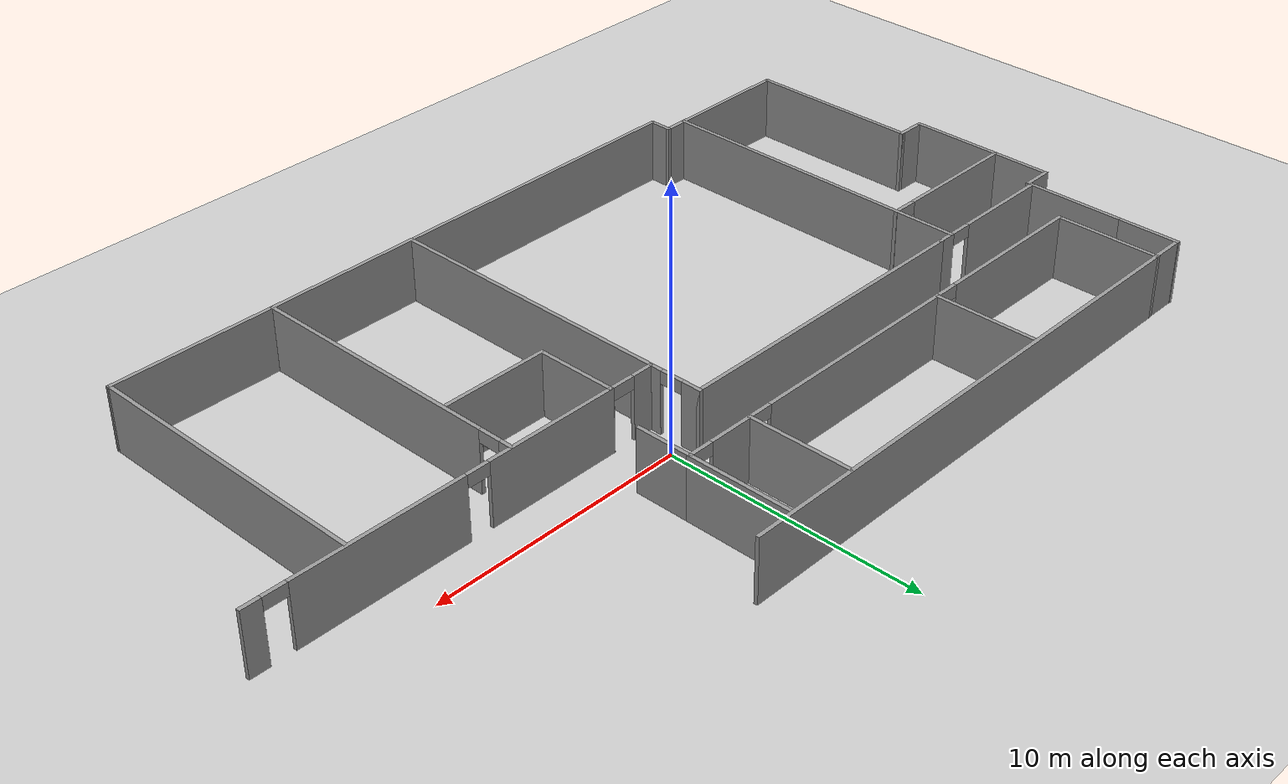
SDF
<sdf version="1.7">
 <world name="default">
  <model name="ground_plane">
   <static>1</static>
   <link name="link">
    <collision name="collision">
     <geometry><plane><normal>0 0 1</normal><size>100 100</size></plane></geometry>
     <surface>
      <contact><collide_bitmask>65535</collide_bitmask></contact>
      <friction><ode><mu>100</mu><mu2>50</mu2></ode></friction>
     </surface>
    </collision>
    <visual name="visual">
     <cast_shadows>0</cast_shadows>
     <geometry><plane><normal>0 0 1</normal><size>100 100</size></plane></geometry>
     <material>
      <script><uri>file://media/materials/scripts/gazebo.material</uri><name>Gazebo/Grey</name></script>
     </material>
    </visual>
   </link>
  </model>
  <model name="SMU_4th_Floor">
   <pose>21.2656 -3.42392 0 0 -0 0</pose>
   <link name="Wall_10">
    <pose>-21.9301 2.97041 0 0 -0 1.5708</pose>
    <visual name="Wall_10_Visual_0">
     <pose>-0.849622 0 1.25 0 -0 0</pose>
     <geometry><box><size>0.550756 0.15 2.5</size></box></geometry>
     <material>
      <script><uri>file://media/materials/scripts/gazebo.material</uri><name>Gazebo/Grey</name></script>
      <ambient>1 1 1 1</ambient>
     </material>
     <meta><layer>0</layer></meta>
    </visual>
    <collision name="Wall_10_Collision_0">
     <geometry><box><size>0.550756 0.15 2.5</size></box></geometry>
     <pose>-0.849622 0 1.25 0 -0 0</pose>
    </collision>
    <visual name="Wall_10_Visual_1">
     <pose>0.725378 0 1.25 0 -0 0</pose>
     <geometry><box><size>0.799244 0.15 2.5</size></box></geometry>
     <material>
      <script><uri>file://media/materials/scripts/gazebo.material</uri><name>Gazebo/Grey</name></script>
      <ambient>1 1 1 1</ambient>
     </material>
     <meta><layer>0</layer></meta>
    </visual>
    <collision name="Wall_10_Collision_1">
     <geometry><box><size>0.799244 0.15 2.5</size></box></geometry>
     <pose>0.725378 0 1.25 0 -0 0</pose>
    </collision>
    <visual name="Wall_10_Visual_2">
     <pose>-0.124244 0 2.25 0 -0 0</pose>
     <geometry><box><size>0.9 0.15 0.5</size></box></geometry>
     <material>
      <script><uri>file://media/materials/scripts/gazebo.material</uri><name>Gazebo/Grey</name></script>
      <ambient>1 1 1 1</ambient>
     </material>
     <meta><layer>0</layer></meta>
    </visual>
    <collision name="Wall_10_Collision_2">
     <geometry><box><size>0.9 0.15 0.5</size></box></geometry>
     <pose>-0.124244 0 2.25 0 -0 0</pose>
    </collision>
   </link>
   <link name="Wall_11">
    <collision name="Wall_11_Collision">
     <geometry><box><size>12.75 0.15 2.5</size></box></geometry>
     <pose>0 0 1.25 0 -0 0</pose>
    </collision>
    <visual name="Wall_11_Visual">
     <pose>0 0 1.25 0 -0 0</pose>
     <geometry><box><size>12.75 0.15 2.5</size></box></geometry>
     <material>
      <script><uri>file://media/materials/scripts/gazebo.material</uri><name>Gazebo/Grey</name></script>
      <ambient>1 1 1 1</ambient>
     </material>
     <meta><layer>0</layer></meta>
    </visual>
    <pose>-28.2301 4.02041 0 0 -0 3.14159</pose>
   </link>
   <link name="Wall_13">
    <pose>-37.3301 4.02041 0 0 -0 3.14159</pose>
    <visual name="Wall_13_Visual_0">
     <pose>-2.49577 0 1.25 0 -0 0</pose>
     <geometry><box><size>0.758458 0.15 2.5</size></box></geometry>
     <material>
      <script><uri>file://media/materials/scripts/gazebo.material</uri><name>Gazebo/Grey</name></script>
      <ambient>1 1 1 1</ambient>
     </material>
     <meta><layer>0</layer></meta>
    </visual>
    <collision name="Wall_13_Collision_0">
     <geometry><box><size>0.758458 0.15 2.5</size></box></geometry>
     <pose>-2.49577 0 1.25 0 -0 0</pose>
    </collision>
    <visual name="Wall_13_Visual_1">
     <pose>0.829229 0 1.25 0 -0 0</pose>
     <geometry><box><size>4.09154 0.15 2.5</size></box></geometry>
     <material>
      <script><uri>file://media/materials/scripts/gazebo.material</uri><name>Gazebo/Grey</name></script>
      <ambient>1 1 1 1</ambient>
     </material>
     <meta><layer>0</layer></meta>
    </visual>
    <collision name="Wall_13_Collision_1">
     <geometry><box><size>4.09154 0.15 2.5</size></box></geometry>
     <pose>0.829229 0 1.25 0 -0 0</pose>
    </collision>
    <visual name="Wall_13_Visual_2">
     <pose>-1.66654 0 2.25 0 -0 0</pose>
     <geometry><box><size>0.9 0.15 0.5</size></box></geometry>
     <material>
      <script><uri>file://media/materials/scripts/gazebo.material</uri><name>Gazebo/Grey</name></script>
      <ambient>1 1 1 1</ambient>
     </material>
     <meta><layer>0</layer></meta>
    </visual>
    <collision name="Wall_13_Collision_2">
     <geometry><box><size>0.9 0.15 0.5</size></box></geometry>
     <pose>-1.66654 0 2.25 0 -0 0</pose>
    </collision>
   </link>
   <link name="Wall_14">
    <collision name="Wall_14_Collision">
     <geometry><box><size>4 0.15 2.5</size></box></geometry>
     <pose>0 0 1.25 0 -0 0</pose>
    </collision>
    <visual name="Wall_14_Visual">
     <pose>0 0 1.25 0 -0 0</pose>
     <geometry><box><size>4 0.15 2.5</size></box></geometry>
     <material>
      <script><uri>file://media/materials/scripts/gazebo.material</uri><name>Gazebo/Grey</name></script>
      <ambient>1 1 1 1</ambient>
     </material>
     <meta><layer>0</layer></meta>
    </visual>
    <pose>-40.1301 5.94541 0 0 -0 1.5708</pose>
   </link>
   <link name="Wall_16">
    <collision name="Wall_16_Collision">
     <geometry><box><size>2.4325 0.15 2.5</size></box></geometry>
     <pose>0 0 1.25 0 -0 0</pose>
    </collision>
    <visual name="Wall_16_Visual">
     <pose>0 0 1.25 0 -0 0</pose>
     <geometry><box><size>2.4325 0.15 2.5</size></box></geometry>
     <material>
      <script><uri>file://media/materials/scripts/gazebo.material</uri><name>Gazebo/Grey</name></script>
      <ambient>1 1 1 1</ambient>
     </material>
     <meta><layer>0</layer></meta>
    </visual>
    <pose>-40.1301 9.01166 0 0 -0 1.5708</pose>
   </link>
   <link name="Wall_17">
    <collision name="Wall_17_Collision">
     <geometry><box><size>1.5 0.15 2.5</size></box></geometry>
     <pose>0 0 1.25 0 -0 0</pose>
    </collision>
    <visual name="Wall_17_Visual">
     <pose>0 0 1.25 0 -0 0</pose>
     <geometry><box><size>1.5 0.15 2.5</size></box></geometry>
     <material>
      <script><uri>file://media/materials/scripts/gazebo.material</uri><name>Gazebo/Grey</name></script>
      <ambient>1 1 1 1</ambient>
     </material>
     <meta><layer>0</layer></meta>
    </visual>
    <pose>-39.4551 10.1377 0 0 -0 0</pose>
   </link>
   <link name="Wall_18">
    <collision name="Wall_18_Collision">
     <geometry><box><size>4.1825 0.15 2.5</size></box></geometry>
     <pose>0 0 1.25 0 -0 0</pose>
    </collision>
    <visual name="Wall_18_Visual">
     <pose>0 0 1.25 0 -0 0</pose>
     <geometry><box><size>4.1825 0.15 2.5</size></box></geometry>
     <material>
      <script><uri>file://media/materials/scripts/gazebo.material</uri><name>Gazebo/Grey</name></script>
      <ambient>1 1 1 1</ambient>
     </material>
     <meta><layer>0</layer></meta>
    </visual>
    <pose>-38.7801 8.13666 0 0 -0 -1.5708</pose>
   </link>
   <link name="Wall_19">
    <pose>-28.9801 6.12041 0 0 -0 0</pose>
    <visual name="Wall_19_Visual_0">
     <pose>-6.69762 0 1.25 0 -0 0</pose>
     <geometry><box><size>6.35476 0.15 2.5</size></box></geometry>
     <material>
      <script><uri>file://media/materials/scripts/gazebo.material</uri><name>Gazebo/Grey</name></script>
      <ambient>1 1 1 1</ambient>
     </material>
     <meta><layer>0</layer></meta>
    </visual>
    <collision name="Wall_19_Collision_0">
     <geometry><box><size>6.35476 0.15 2.5</size></box></geometry>
     <pose>-6.69762 0 1.25 0 -0 0</pose>
    </collision>
    <visual name="Wall_19_Visual_1">
     <pose>1.75972 0 1.25 0 -0 0</pose>
     <geometry><box><size>8.75991 0.15 2.5</size></box></geometry>
     <material>
      <script><uri>file://media/materials/scripts/gazebo.material</uri><name>Gazebo/Grey</name></script>
      <ambient>1 1 1 1</ambient>
     </material>
     <meta><layer>0</layer></meta>
    </visual>
    <collision name="Wall_19_Collision_1">
     <geometry><box><size>8.75991 0.15 2.5</size></box></geometry>
     <pose>1.75972 0 1.25 0 -0 0</pose>
    </collision>
    <visual name="Wall_19_Visual_2">
     <pose>7.94293 0 1.25 0 -0 0</pose>
     <geometry><box><size>1.80652 0.15 2.5</size></box></geometry>
     <material>
      <script><uri>file://media/materials/scripts/gazebo.material</uri><name>Gazebo/Grey</name></script>
      <ambient>1 1 1 1</ambient>
     </material>
     <meta><layer>0</layer></meta>
    </visual>
    <collision name="Wall_19_Collision_2">
     <geometry><box><size>1.80652 0.15 2.5</size></box></geometry>
     <pose>7.94293 0 1.25 0 -0 0</pose>
    </collision>
    <visual name="Wall_19_Visual_3">
     <pose>9.8106 0 1.25 0 -0 0</pose>
     <geometry><box><size>0.128804 0.15 2.5</size></box></geometry>
     <material>
      <script><uri>file://media/materials/scripts/gazebo.material</uri><name>Gazebo/Grey</name></script>
      <ambient>1 1 1 1</ambient>
     </material>
     <meta><layer>0</layer></meta>
    </visual>
    <collision name="Wall_19_Collision_3">
     <geometry><box><size>0.128804 0.15 2.5</size></box></geometry>
     <pose>9.8106 0 1.25 0 -0 0</pose>
    </collision>
    <visual name="Wall_19_Visual_4">
     <pose>-3.07024 0 2.25 0 -0 0</pose>
     <geometry><box><size>0.9 0.15 0.5</size></box></geometry>
     <material>
      <script><uri>file://media/materials/scripts/gazebo.material</uri><name>Gazebo/Grey</name></script>
      <ambient>1 1 1 1</ambient>
     </material>
     <meta><layer>0</layer></meta>
    </visual>
    <collision name="Wall_19_Collision_4">
     <geometry><box><size>0.9 0.15 0.5</size></box></geometry>
     <pose>-3.07024 0 2.25 0 -0 0</pose>
    </collision>
    <visual name="Wall_19_Visual_5">
     <pose>6.58967 0 2.25 0 -0 0</pose>
     <geometry><box><size>0.9 0.15 0.5</size></box></geometry>
     <material>
      <script><uri>file://media/materials/scripts/gazebo.material</uri><name>Gazebo/Grey</name></script>
      <ambient>1 1 1 1</ambient>
     </material>
     <meta><layer>0</layer></meta>
    </visual>
    <collision name="Wall_19_Collision_5">
     <geometry><box><size>0.9 0.15 0.5</size></box></geometry>
     <pose>6.58967 0 2.25 0 -0 0</pose>
    </collision>
    <visual name="Wall_19_Visual_6">
     <pose>9.2962 0 2.25 0 -0 0</pose>
     <geometry><box><size>0.9 0.15 0.5</size></box></geometry>
     <material>
      <script><uri>file://media/materials/scripts/gazebo.material</uri><name>Gazebo/Grey</name></script>
      <ambient>1 1 1 1</ambient>
     </material>
     <meta><layer>0</layer></meta>
    </visual>
    <collision name="Wall_19_Collision_6">
     <geometry><box><size>0.9 0.15 0.5</size></box></geometry>
     <pose>9.2962 0 2.25 0 -0 0</pose>
    </collision>
   </link>
   <link name="Wall_21">
    <collision name="Wall_21_Collision">
     <geometry><box><size>2.25 0.15 2.5</size></box></geometry>
     <pose>0 0 1.25 0 -0 0</pose>
    </collision>
    <visual name="Wall_21_Visual">
     <pose>0 0 1.25 0 -0 0</pose>
     <geometry><box><size>2.25 0.15 2.5</size></box></geometry>
     <material>
      <script><uri>file://media/materials/scripts/gazebo.material</uri><name>Gazebo/Grey</name></script>
      <ambient>1 1 1 1</ambient>
     </material>
     <meta><layer>0</layer></meta>
    </visual>
    <pose>-19.1801 5.07041 0 0 -0 -1.5708</pose>
   </link>
   <link name="Wall_43">
    <collision name="Wall_43_Collision">
     <geometry><box><size>11.75 0.15 2.5</size></box></geometry>
     <pose>0 0 1.25 0 -0 0</pose>
    </collision>
    <visual name="Wall_43_Visual">
     <pose>0 0 1.25 0 -0 0</pose>
     <geometry><box><size>11.75 0.15 2.5</size></box></geometry>
     <material>
      <script><uri>file://media/materials/scripts/gazebo.material</uri><name>Gazebo/Grey</name></script>
      <ambient>1 1 1 1</ambient>
     </material>
     <meta><layer>0</layer></meta>
    </visual>
    <pose>-21.9301 -3.87959 0 0 -0 -1.5708</pose>
   </link>
   <link name="Wall_44">
    <collision name="Wall_44_Collision">
     <geometry><box><size>6.25 0.15 2.5</size></box></geometry>
     <pose>0 0 1.25 0 -0 0</pose>
    </collision>
    <visual name="Wall_44_Visual">
     <pose>0 0 1.25 0 -0 0</pose>
     <geometry><box><size>6.25 0.15 2.5</size></box></geometry>
     <material>
      <script><uri>file://media/materials/scripts/gazebo.material</uri><name>Gazebo/Grey</name></script>
      <ambient>1 1 1 1</ambient>
     </material>
     <meta><layer>0</layer></meta>
    </visual>
    <pose>-18.8801 -9.67959 0 0 -0 0</pose>
   </link>
   <link name="Wall_45">
    <pose>-15.8301 -3.87959 0 0 -0 1.5708</pose>
    <visual name="Wall_45_Visual_0">
     <pose>-0.742565 0 1.25 0 -0 0</pose>
     <geometry><box><size>10.2649 0.15 2.5</size></box></geometry>
     <material>
      <script><uri>file://media/materials/scripts/gazebo.material</uri><name>Gazebo/Grey</name></script>
      <ambient>1 1 1 1</ambient>
     </material>
     <meta><layer>0</layer></meta>
    </visual>
    <collision name="Wall_45_Collision_0">
     <geometry><box><size>10.2649 0.15 2.5</size></box></geometry>
     <pose>-0.742565 0 1.25 0 -0 0</pose>
    </collision>
    <visual name="Wall_45_Visual_1">
     <pose>5.58244 0 1.25 0 -0 0</pose>
     <geometry><box><size>0.58513 0.15 2.5</size></box></geometry>
     <material>
      <script><uri>file://media/materials/scripts/gazebo.material</uri><name>Gazebo/Grey</name></script>
      <ambient>1 1 1 1</ambient>
     </material>
     <meta><layer>0</layer></meta>
    </visual>
    <collision name="Wall_45_Collision_1">
     <geometry><box><size>0.58513 0.15 2.5</size></box></geometry>
     <pose>5.58244 0 1.25 0 -0 0</pose>
    </collision>
    <visual name="Wall_45_Visual_2">
     <pose>4.83987 0 2.25 0 -0 0</pose>
     <geometry><box><size>0.9 0.15 0.5</size></box></geometry>
     <material>
      <script><uri>file://media/materials/scripts/gazebo.material</uri><name>Gazebo/Grey</name></script>
      <ambient>1 1 1 1</ambient>
     </material>
     <meta><layer>0</layer></meta>
    </visual>
    <collision name="Wall_45_Collision_2">
     <geometry><box><size>0.9 0.15 0.5</size></box></geometry>
     <pose>4.83987 0 2.25 0 -0 0</pose>
    </collision>
   </link>
   <link name="Wall_49">
    <collision name="Wall_49_Collision">
     <geometry><box><size>3.25 0.15 2.5</size></box></geometry>
     <pose>0 0 1.25 0 -0 0</pose>
    </collision>
    <visual name="Wall_49_Visual">
     <pose>0 0 1.25 0 -0 0</pose>
     <geometry><box><size>3.25 0.15 2.5</size></box></geometry>
     <material>
      <script><uri>file://media/materials/scripts/gazebo.material</uri><name>Gazebo/Grey</name></script>
      <ambient>1 1 1 1</ambient>
     </material>
     <meta><layer>0</layer></meta>
    </visual>
    <pose>-20.0801 0.370409 0 0 -0 -1.5708</pose>
   </link>
   <link name="Wall_50">
    <collision name="Wall_50_Collision">
     <geometry><box><size>4.25 0.15 2.5</size></box></geometry>
     <pose>0 0 1.25 0 -0 0</pose>
    </collision>
    <visual name="Wall_50_Visual">
     <pose>0 0 1.25 0 -0 0</pose>
     <geometry><box><size>4.25 0.15 2.5</size></box></geometry>
     <material>
      <script><uri>file://media/materials/scripts/gazebo.material</uri><name>Gazebo/Grey</name></script>
      <ambient>1 1 1 1</ambient>
     </material>
     <meta><layer>0</layer></meta>
    </visual>
    <pose>-18.0301 -1.17959 0 0 -0 0</pose>
   </link>
   <link name="Wall_54">
    <collision name="Wall_54_Collision">
     <geometry><box><size>11.75 0.15 2.5</size></box></geometry>
     <pose>0 0 1.25 0 -0 0</pose>
    </collision>
    <visual name="Wall_54_Visual">
     <pose>0 0 1.25 0 -0 0</pose>
     <geometry><box><size>11.75 0.15 2.5</size></box></geometry>
     <material>
      <script><uri>file://media/materials/scripts/gazebo.material</uri><name>Gazebo/Grey</name></script>
      <ambient>1 1 1 1</ambient>
     </material>
     <meta><layer>0</layer></meta>
    </visual>
    <pose>-9.44551 -3.91726 0 0 -0 -1.5708</pose>
   </link>
   <link name="Wall_55">
    <collision name="Wall_55_Collision">
     <geometry><box><size>6.53467 0.15 2.5</size></box></geometry>
     <pose>0 0 1.25 0 -0 0</pose>
    </collision>
    <visual name="Wall_55_Visual">
     <pose>0 0 1.25 0 -0 0</pose>
     <geometry><box><size>6.53467 0.15 2.5</size></box></geometry>
     <material>
      <script><uri>file://media/materials/scripts/gazebo.material</uri><name>Gazebo/Grey</name></script>
      <ambient>1 1 1 1</ambient>
     </material>
     <meta><layer>0</layer></meta>
    </visual>
    <pose>-12.6378 -9.69842 0 0 -0 3.13569</pose>
   </link>
   <link name="Wall_63">
    <collision name="Wall_63_Collision">
     <geometry><box><size>12.5 0.15 2.5</size></box></geometry>
     <pose>0 0 1.25 0 -0 0</pose>
    </collision>
    <visual name="Wall_63_Visual">
     <pose>0 0 1.25 0 -0 0</pose>
     <geometry><box><size>12.5 0.15 2.5</size></box></geometry>
     <material>
      <script><uri>file://media/materials/scripts/gazebo.material</uri><name>Gazebo/Grey</name></script>
      <ambient>1 1 1 1</ambient>
     </material>
     <meta><layer>0</layer></meta>
    </visual>
    <pose>-28.1051 -9.67959 0 0 -0 3.14159</pose>
   </link>
   <link name="Wall_64">
    <collision name="Wall_64_Collision">
     <geometry><box><size>1 0.15 2.5</size></box></geometry>
     <pose>0 0 1.25 0 -0 0</pose>
    </collision>
    <visual name="Wall_64_Visual">
     <pose>0 0 1.25 0 -0 0</pose>
     <geometry><box><size>1 0.15 2.5</size></box></geometry>
     <material>
      <script><uri>file://media/materials/scripts/gazebo.material</uri><name>Gazebo/Grey</name></script>
      <ambient>1 1 1 1</ambient>
     </material>
     <meta><layer>0</layer></meta>
    </visual>
    <pose>-34.2801 -9.25459 0 0 -0 1.5708</pose>
   </link>
   <link name="Wall_65">
    <collision name="Wall_65_Collision">
     <geometry><box><size>6 0.15 2.5</size></box></geometry>
     <pose>0 0 1.25 0 -0 0</pose>
    </collision>
    <visual name="Wall_65_Visual">
     <pose>0 0 1.25 0 -0 0</pose>
     <geometry><box><size>6 0.15 2.5</size></box></geometry>
     <material>
      <script><uri>file://media/materials/scripts/gazebo.material</uri><name>Gazebo/Grey</name></script>
      <ambient>1 1 1 1</ambient>
     </material>
     <meta><layer>0</layer></meta>
    </visual>
    <pose>-37.2051 -8.82959 0 0 -0 3.14159</pose>
   </link>
   <link name="Wall_66">
    <collision name="Wall_66_Collision">
     <geometry><box><size>7 0.15 2.5</size></box></geometry>
     <pose>0 0 1.25 0 -0 0</pose>
    </collision>
    <visual name="Wall_66_Visual">
     <pose>0 0 1.25 0 -0 0</pose>
     <geometry><box><size>7 0.15 2.5</size></box></geometry>
     <material>
      <script><uri>file://media/materials/scripts/gazebo.material</uri><name>Gazebo/Grey</name></script>
      <ambient>1 1 1 1</ambient>
     </material>
     <meta><layer>0</layer></meta>
    </visual>
    <pose>-40.1301 -5.40459 0 0 -0 1.5708</pose>
   </link>
   <link name="Wall_67">
    <collision name="Wall_67_Collision">
     <geometry><box><size>1.25 0.15 2.5</size></box></geometry>
     <pose>0 0 1.25 0 -0 0</pose>
    </collision>
    <visual name="Wall_67_Visual">
     <pose>0 0 1.25 0 -0 0</pose>
     <geometry><box><size>1.25 0.15 2.5</size></box></geometry>
     <material>
      <script><uri>file://media/materials/scripts/gazebo.material</uri><name>Gazebo/Grey</name></script>
      <ambient>1 1 1 1</ambient>
     </material>
     <meta><layer>0</layer></meta>
    </visual>
    <pose>-40.6801 -1.97959 0 0 -0 3.14159</pose>
   </link>
   <link name="Wall_68">
    <collision name="Wall_68_Collision">
     <geometry><box><size>6 0.15 2.5</size></box></geometry>
     <pose>0 0 1.25 0 -0 0</pose>
    </collision>
    <visual name="Wall_68_Visual">
     <pose>0 0 1.25 0 -0 0</pose>
     <geometry><box><size>6 0.15 2.5</size></box></geometry>
     <material>
      <script><uri>file://media/materials/scripts/gazebo.material</uri><name>Gazebo/Grey</name></script>
      <ambient>1 1 1 1</ambient>
     </material>
     <meta><layer>0</layer></meta>
    </visual>
    <pose>-41.2301 0.945408 0 0 -0 1.5708</pose>
   </link>
   <link name="Wall_69">
    <collision name="Wall_69_Collision">
     <geometry><box><size>1.25 0.15 2.5</size></box></geometry>
     <pose>0 0 1.25 0 -0 0</pose>
    </collision>
    <visual name="Wall_69_Visual">
     <pose>0 0 1.25 0 -0 0</pose>
     <geometry><box><size>1.25 0.15 2.5</size></box></geometry>
     <material>
      <script><uri>file://media/materials/scripts/gazebo.material</uri><name>Gazebo/Grey</name></script>
      <ambient>1 1 1 1</ambient>
     </material>
     <meta><layer>0</layer></meta>
    </visual>
    <pose>-40.6801 3.87041 0 0 -0 0</pose>
   </link>
   <link name="Wall_7">
    <pose>-12.9051 1.92041 0 0 -0 3.14159</pose>
    <visual name="Wall_7_Visual_0">
     <pose>-6.87005 0 1.25 0 -0 0</pose>
     <geometry><box><size>0.759903 0.15 2.5</size></box></geometry>
     <material>
      <script><uri>file://media/materials/scripts/gazebo.material</uri><name>Gazebo/Grey</name></script>
      <ambient>1 1 1 1</ambient>
     </material>
     <meta><layer>0</layer></meta>
    </visual>
    <collision name="Wall_7_Collision_0">
     <geometry><box><size>0.759903 0.15 2.5</size></box></geometry>
     <pose>-6.87005 0 1.25 0 -0 0</pose>
    </collision>
    <visual name="Wall_7_Visual_1">
     <pose>-2.26802 0 1.25 0 -0 0</pose>
     <geometry><box><size>6.64416 0.15 2.5</size></box></geometry>
     <material>
      <script><uri>file://media/materials/scripts/gazebo.material</uri><name>Gazebo/Grey</name></script>
      <ambient>1 1 1 1</ambient>
     </material>
     <meta><layer>0</layer></meta>
    </visual>
    <collision name="Wall_7_Collision_1">
     <geometry><box><size>6.64416 0.15 2.5</size></box></geometry>
     <pose>-2.26802 0 1.25 0 -0 0</pose>
    </collision>
    <visual name="Wall_7_Visual_2">
     <pose>4.60203 0 1.25 0 -0 0</pose>
     <geometry><box><size>5.29594 0.15 2.5</size></box></geometry>
     <material>
      <script><uri>file://media/materials/scripts/gazebo.material</uri><name>Gazebo/Grey</name></script>
      <ambient>1 1 1 1</ambient>
     </material>
     <meta><layer>0</layer></meta>
    </visual>
    <collision name="Wall_7_Collision_2">
     <geometry><box><size>5.29594 0.15 2.5</size></box></geometry>
     <pose>4.60203 0 1.25 0 -0 0</pose>
    </collision>
    <visual name="Wall_7_Visual_3">
     <pose>-6.0401 0 2.25 0 -0 0</pose>
     <geometry><box><size>0.9 0.15 0.5</size></box></geometry>
     <material>
      <script><uri>file://media/materials/scripts/gazebo.material</uri><name>Gazebo/Grey</name></script>
      <ambient>1 1 1 1</ambient>
     </material>
     <meta><layer>0</layer></meta>
    </visual>
    <collision name="Wall_7_Collision_3">
     <geometry><box><size>0.9 0.15 0.5</size></box></geometry>
     <pose>-6.0401 0 2.25 0 -0 0</pose>
    </collision>
    <visual name="Wall_7_Visual_4">
     <pose>1.50406 0 2.25 0 -0 0</pose>
     <geometry><box><size>0.9 0.15 0.5</size></box></geometry>
     <material>
      <script><uri>file://media/materials/scripts/gazebo.material</uri><name>Gazebo/Grey</name></script>
      <ambient>1 1 1 1</ambient>
     </material>
     <meta><layer>0</layer></meta>
    </visual>
    <collision name="Wall_7_Collision_4">
     <geometry><box><size>0.9 0.15 0.5</size></box></geometry>
     <pose>1.50406 0 2.25 0 -0 0</pose>
    </collision>
   </link>
   <link name="Wall_70">
    <collision name="Wall_70_Collision">
     <geometry><box><size>0.3 0.15 2.5</size></box></geometry>
     <pose>0 0 1.25 0 -0 0</pose>
    </collision>
    <visual name="Wall_70_Visual">
     <pose>0 0 1.25 0 -0 0</pose>
     <geometry><box><size>0.3 0.15 2.5</size></box></geometry>
     <material>
      <script><uri>file://media/materials/scripts/gazebo.material</uri><name>Gazebo/Grey</name></script>
      <ambient>1 1 1 1</ambient>
     </material>
     <meta><layer>0</layer></meta>
    </visual>
    <pose>-40.1301 3.94541 0 0 -0 1.5708</pose>
   </link>
   <link name="Wall_73">
    <collision name="Wall_73_Collision">
     <geometry><box><size>12.95 0.15 2.5</size></box></geometry>
     <pose>0 0 1.25 0 -0 0</pose>
    </collision>
    <visual name="Wall_73_Visual">
     <pose>0 0 1.25 0 -0 0</pose>
     <geometry><box><size>12.95 0.15 2.5</size></box></geometry>
     <material>
      <script><uri>file://media/materials/scripts/gazebo.material</uri><name>Gazebo/Grey</name></script>
      <ambient>1 1 1 1</ambient>
     </material>
     <meta><layer>0</layer></meta>
    </visual>
    <pose>-35.158 -2.39369 0 0 -0 -1.5708</pose>
   </link>
   <link name="Wall_75">
    <pose>-38.1933 1.59493 0 0 -0 0</pose>
    <visual name="Wall_75_Visual_0">
     <pose>-0.522594 0 1.25 0 -0 0</pose>
     <geometry><box><size>5.20481 0.15 2.5</size></box></geometry>
     <material>
      <script><uri>file://media/materials/scripts/gazebo.material</uri><name>Gazebo/Grey</name></script>
      <ambient>1 1 1 1</ambient>
     </material>
     <meta><layer>0</layer></meta>
    </visual>
    <collision name="Wall_75_Collision_0">
     <geometry><box><size>5.20481 0.15 2.5</size></box></geometry>
     <pose>-0.522594 0 1.25 0 -0 0</pose>
    </collision>
    <visual name="Wall_75_Visual_1">
     <pose>3.05241 0 1.25 0 -0 0</pose>
     <geometry><box><size>0.145188 0.15 2.5</size></box></geometry>
     <material>
      <script><uri>file://media/materials/scripts/gazebo.material</uri><name>Gazebo/Grey</name></script>
      <ambient>1 1 1 1</ambient>
     </material>
     <meta><layer>0</layer></meta>
    </visual>
    <collision name="Wall_75_Collision_1">
     <geometry><box><size>0.145188 0.15 2.5</size></box></geometry>
     <pose>3.05241 0 1.25 0 -0 0</pose>
    </collision>
    <visual name="Wall_75_Visual_2">
     <pose>2.52981 0 2.25 0 -0 0</pose>
     <geometry><box><size>0.9 0.15 0.5</size></box></geometry>
     <material>
      <script><uri>file://media/materials/scripts/gazebo.material</uri><name>Gazebo/Grey</name></script>
      <ambient>1 1 1 1</ambient>
     </material>
     <meta><layer>0</layer></meta>
    </visual>
    <collision name="Wall_75_Collision_2">
     <geometry><box><size>0.9 0.15 0.5</size></box></geometry>
     <pose>2.52981 0 2.25 0 -0 0</pose>
    </collision>
   </link>
   <link name="Wall_77">
    <collision name="Wall_77_Collision">
     <geometry><box><size>21.25 0.15 2.5</size></box></geometry>
     <pose>0 0 1.25 0 -0 0</pose>
    </collision>
    <visual name="Wall_77_Visual">
     <pose>0 0 1.25 0 -0 0</pose>
     <geometry><box><size>21.25 0.15 2.5</size></box></geometry>
     <material>
      <script><uri>file://media/materials/scripts/gazebo.material</uri><name>Gazebo/Grey</name></script>
      <ambient>1 1 1 1</ambient>
     </material>
     <meta><layer>0</layer></meta>
    </visual>
    <pose>-28.2301 10.1529 0 0 -0 0</pose>
   </link>
   <link name="Wall_79">
    <collision name="Wall_79_Collision">
     <geometry><box><size>4.1 0.15 2.5</size></box></geometry>
     <pose>0 0 1.25 0 -0 0</pose>
    </collision>
    <visual name="Wall_79_Visual">
     <pose>0 0 1.25 0 -0 0</pose>
     <geometry><box><size>4.1 0.15 2.5</size></box></geometry>
     <material>
      <script><uri>file://media/materials/scripts/gazebo.material</uri><name>Gazebo/Grey</name></script>
      <ambient>1 1 1 1</ambient>
     </material>
     <meta><layer>0</layer></meta>
    </visual>
    <pose>-31.4945 8.16724 0 0 -0 -1.5708</pose>
   </link>
   <link name="Wall_83">
    <collision name="Wall_83_Collision">
     <geometry><box><size>4.1 0.15 2.5</size></box></geometry>
     <pose>0 0 1.25 0 -0 0</pose>
    </collision>
    <visual name="Wall_83_Visual">
     <pose>0 0 1.25 0 -0 0</pose>
     <geometry><box><size>4.1 0.15 2.5</size></box></geometry>
     <material>
      <script><uri>file://media/materials/scripts/gazebo.material</uri><name>Gazebo/Grey</name></script>
      <ambient>1 1 1 1</ambient>
     </material>
     <meta><layer>0</layer></meta>
    </visual>
    <pose>-21.907 8.13889 0 0 -0 -1.5708</pose>
   </link>
   <link name="Wall_85">
    <collision name="Wall_85_Collision">
     <geometry><box><size>4.1 0.15 2.5</size></box></geometry>
     <pose>0 0 1.25 0 -0 0</pose>
    </collision>
    <visual name="Wall_85_Visual">
     <pose>0 0 1.25 0 -0 0</pose>
     <geometry><box><size>4.1 0.15 2.5</size></box></geometry>
     <material>
      <script><uri>file://media/materials/scripts/gazebo.material</uri><name>Gazebo/Grey</name></script>
      <ambient>1 1 1 1</ambient>
     </material>
     <meta><layer>0</layer></meta>
    </visual>
    <pose>-19.1801 8.09541 0 0 -0 1.5708</pose>
   </link>
   <link name="Wall_9">
    <pose>-21.0051 1.92041 0 0 -0 3.14159</pose>
    <visual name="Wall_9_Visual_0">
     <pose>-0.920384 0 1.25 0 -0 0</pose>
     <geometry><box><size>0.159232 0.15 2.5</size></box></geometry>
     <material>
      <script><uri>file://media/materials/scripts/gazebo.material</uri><name>Gazebo/Grey</name></script>
      <ambient>1 1 1 1</ambient>
     </material>
     <meta><layer>0</layer></meta>
    </visual>
    <collision name="Wall_9_Collision_0">
     <geometry><box><size>0.159232 0.15 2.5</size></box></geometry>
     <pose>-0.920384 0 1.25 0 -0 0</pose>
    </collision>
    <visual name="Wall_9_Visual_1">
     <pose>0.529616 0 1.25 0 -0 0</pose>
     <geometry><box><size>0.940768 0.15 2.5</size></box></geometry>
     <material>
      <script><uri>file://media/materials/scripts/gazebo.material</uri><name>Gazebo/Grey</name></script>
      <ambient>1 1 1 1</ambient>
     </material>
     <meta><layer>0</layer></meta>
    </visual>
    <collision name="Wall_9_Collision_1">
     <geometry><box><size>0.940768 0.15 2.5</size></box></geometry>
     <pose>0.529616 0 1.25 0 -0 0</pose>
    </collision>
    <visual name="Wall_9_Visual_2">
     <pose>-0.390768 0 2.25 0 -0 0</pose>
     <geometry><box><size>0.9 0.15 0.5</size></box></geometry>
     <material>
      <script><uri>file://media/materials/scripts/gazebo.material</uri><name>Gazebo/Grey</name></script>
      <ambient>1 1 1 1</ambient>
     </material>
     <meta><layer>0</layer></meta>
    </visual>
    <collision name="Wall_9_Collision_2">
     <geometry><box><size>0.9 0.15 0.5</size></box></geometry>
     <pose>-0.390768 0 2.25 0 -0 0</pose>
    </collision>
   </link>
   <static>1</static>
  </model>
 </world>
</sdf>
